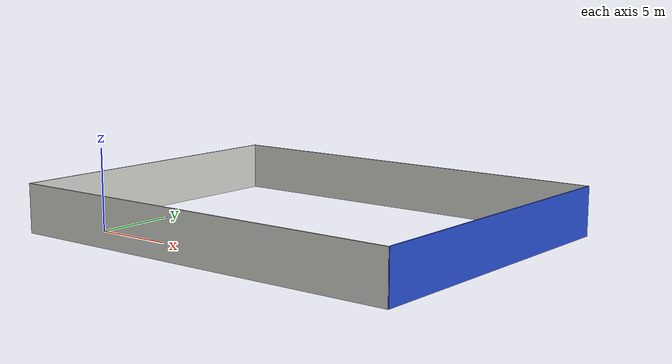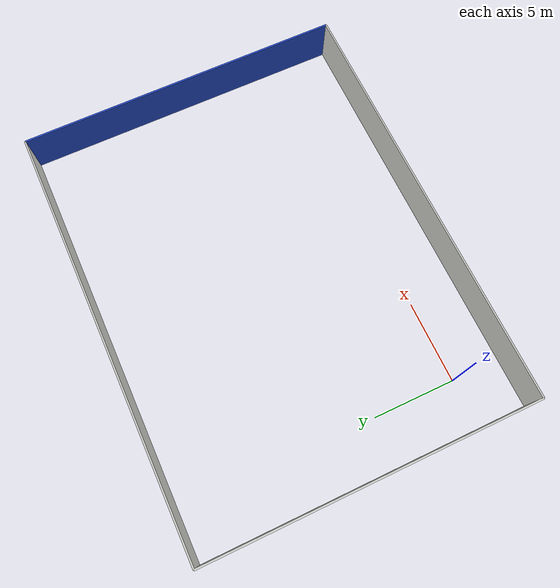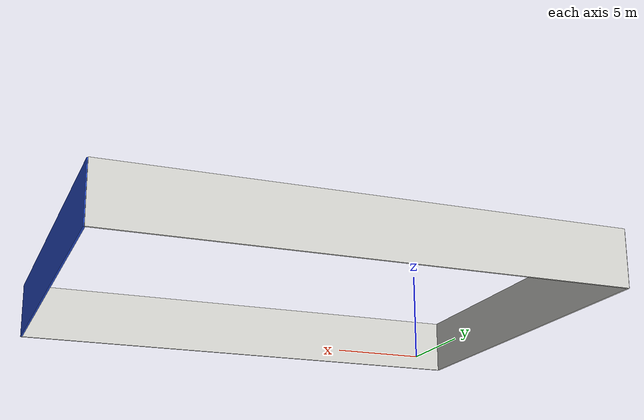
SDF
<?xml version='1.0'?>
<sdf version='1.6'>
    <model name='InfiPlant'>
        <pose frame=''>0 0 0 0 0 0</pose>
        <link name='wall_0'>
            <collision name='wall_0_collision'>
                <geometry>
                    <box>
                        <size>26 0.10 3</size>
                    </box>
                </geometry>
                <pose frame=''>0 0 0 0 -0 0</pose>
            </collision>
            <visual name='wall_0_visual'>
                <pose frame=''>0 0 0 0 -0 0</pose>
                <geometry>
                    <box>
                        <size>26 0.10 3</size>
                    </box>
                </geometry>
                <material>
                    <script>
                        <uri>file://media/materials/scripts/gazebo.material</uri>
                        <name>Gazebo/CeilingTiled</name>
                    </script>
                    <ambient>0.996078 0.47451 0.0196078 1</ambient>
                </material>
                <meta>
                    <layer>0</layer>
                </meta>
                <transparency>0.1</transparency>
            </visual>
            <pose frame=''>10 -3 1.5 0 0 0</pose>
        </link>

        <link name='wall_1'>
            <collision name='wall_1_collision'>
                <geometry>
                    <box>
                        <size>26 0.10 3</size>
                    </box>
                </geometry>
                <pose frame=''>0 0 0 0 -0 0</pose>
            </collision>
            <visual name='wall_1_visual'>
                <pose frame=''>0 0 0 0 -0 0</pose>
                <geometry>
                    <box>
                        <size>26 0.10 3</size>
                    </box>
                </geometry>
                <material>
                    <script>
                        <uri>file://media/materials/scripts/gazebo.material</uri>
                        <name>Gazebo/CeilingTiled</name>
                    </script>
                    <ambient>0.996078 0.47451 0.0196078 1</ambient>
                </material>
                <meta>
                    <layer>0</layer>
                </meta>
                <transparency>0.1</transparency>
            </visual>
            <pose frame=''>10 17 1.5 0 0 0</pose>
        </link>

        <link name='wall_2'>
            <collision name='wall_2_collision'>
                <geometry>
                    <box>
                        <size>20 0.10 3</size>
                    </box>
                </geometry>
                <pose frame=''>0 0 0 0 -0 0</pose>
            </collision>
            <visual name='wall_2_visual'>
                <pose frame=''>0 0 0 0 -0 0</pose>
                <geometry>
                    <box>
                        <size>20 0.10 3</size>
                    </box>
                </geometry>
                <material>
                    <script>
                        <uri>file://media/materials/scripts/gazebo.material</uri>
                        <name>Gazebo/CeilingTiled</name>
                    </script>
                    <ambient>0.996078 0.47451 0.0196078 1</ambient>
                </material>
                <meta>
                    <layer>0</layer>
                </meta>
                <transparency>0.1</transparency>
            </visual>
            <pose frame=''>-3 7 1.5 0 0 1.5707963267948966</pose>
        </link>

        <link name='wall_3'>
            <collision name='wall_3_collision'>
                <geometry>
                    <box>
                        <size>20 0.10 3</size>
                    </box>
                </geometry>
                <pose frame=''>0 0 0 0 -0 0</pose>
            </collision>
            <visual name='wall_3_visual'>
                <pose frame=''>0 0 0 0 -0 0</pose>
                <geometry>
                    <box>
                        <size>20 0.10 3</size>
                    </box>
                </geometry>
                <material>
                    <script>
                        <uri>file://media/materials/scripts/gazebo.material</uri>
                        <name> Gazebo/Blue </name>
                    </script>
                </material>
                <meta>
                    <layer>0</layer>
                </meta>
                <transparency>0.1</transparency>
            </visual>
            <pose frame=''>23 7 1.5 0 0 1.5707963267948966</pose>
        </link>
        <static>1</static>
    </model>
</sdf>
